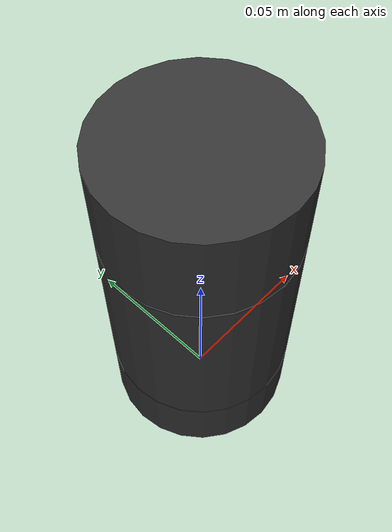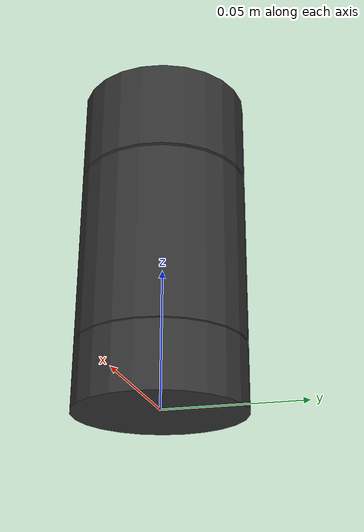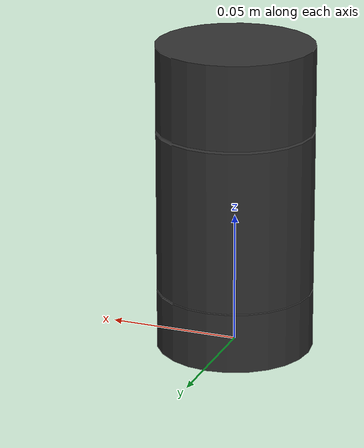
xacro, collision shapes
<?xml version="1.0"?>
<!--
  Pan-Tilt 云台独立模型（不含相机）
  用于可视化云台坐标系
-->
<robot name="pan_tilt_robot" xmlns:xacro="http://www.ros.org/wiki/xacro">

  <!-- 引入云台 macro -->
  <xacro:include filename="$(find pan_tilt_description)/urdf/pan_tilt.urdf.xacro"/>

  <!-- 虚拟基座 -->
  <link name="base_link"/>

  <!-- 挂载云台 -->
  <xacro:pan_tilt parent="base_link">
    <origin xyz="0 0 0" rpy="0 0 0"/>
  </xacro:pan_tilt>

</robot>

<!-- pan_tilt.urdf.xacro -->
<robot xmlns:xacro="http://www.ros.org/wiki/xacro" name="pan_tilt" description="iqr pan tilt">
  <xacro:macro name="pan_tilt" params="parent *origin">
    <xacro:property name="prefix" value="pan_tilt"/>
    <xacro:property name="P_PI" value="3.1415926535897931"/>

    <joint name="${prefix}_base_joint" type="fixed">
      <xacro:insert_block name="origin"/>
      <parent link="${parent}"/>
      <child link="${prefix}_base_link"/>
    </joint>

    <link name="${prefix}_base_link">
      <inertial>
        <origin xyz="0 0 0.01" rpy="0 0 0"/>
        <mass value="0.1"/>
        <inertia ixx="0.0001" ixy="0" ixz="0" iyy="0.0001" iyz="0" izz="0.0001"/>
      </inertial>
      <visual>
        <origin xyz="0 0 0" rpy="0 0 -${P_PI/2}"/>
        <geometry>
          <mesh filename="package://pan_tilt_description/urdf/mesh/base.stl"/>
        </geometry>
        <material name="">
          <color rgba="0.2 0.2 0.2 1"/>
        </material>
      </visual>
      <collision>
        <origin xyz="0 0 0.01" rpy="0 0 0"/>
        <geometry>
          <cylinder length="0.023" radius="0.03"/>
        </geometry>
      </collision>
    </link>

    <link name="${prefix}_yaw_link">
      <inertial>
        <origin xyz="0 0 0.03" rpy="0 0 0"/>
        <mass value="0.08"/>
        <inertia ixx="0.0001" ixy="0" ixz="0" iyy="0.0001" iyz="0" izz="0.0001"/>
      </inertial>
      <visual>
        <origin xyz="0 0 0" rpy="0 0 -${P_PI/2}"/>
        <geometry>
          <mesh filename="package://pan_tilt_description/urdf/mesh/yaw.stl"/>
        </geometry>
        <material name="">
          <color rgba="0.2 0.2 0.2 1"/>
        </material>
      </visual>
      <collision>
        <origin xyz="0 0 0.03" rpy="0 0 0"/>
        <geometry>
          <cylinder length="0.062" radius="0.03"/>
        </geometry>
      </collision>
    </link>
    <joint name="${prefix}_yaw_joint" type="revolute">
      <origin xyz="0.0 0.0 0.023" rpy="0.0 0.0 0.0"/>
      <parent link="${prefix}_base_link"/>
      <child link="${prefix}_yaw_link"/>
      <axis xyz="0 0 1"/>
      <limit lower="${-P_PI/3}" upper="${P_PI/3}" effort="5.0" velocity="${P_PI/6}"/>
      <dynamics damping="0.5" friction="0.1"/>
    </joint>

    <!-- Yaw Transmission for Gazebo -->
    <transmission name="${prefix}_yaw_trans">
      <type>transmission_interface/SimpleTransmission</type>
      <joint name="${prefix}_yaw_joint">
        <hardwareInterface>hardware_interface/PositionJointInterface</hardwareInterface>
      </joint>
      <actuator name="${prefix}_yaw_motor">
        <hardwareInterface>hardware_interface/PositionJointInterface</hardwareInterface>
        <mechanicalReduction>1</mechanicalReduction>
      </actuator>
    </transmission>

    <link name="${prefix}_pitch_link">
      <inertial>
        <origin xyz="0 0 0.016" rpy="0 0 0"/>
        <mass value="0.06"/>
        <inertia ixx="0.0001" ixy="0" ixz="0" iyy="0.0001" iyz="0" izz="0.0001"/>
      </inertial>
      <visual>
        <origin xyz="0 0 0" rpy="0 0 -${P_PI/2}"/>
        <geometry>
          <mesh filename="package://pan_tilt_description/urdf/mesh/pitch.stl"/>
        </geometry>
        <material name="">
          <color rgba="0.2 0.2 0.2 1"/>
        </material>
      </visual>
      <collision>
        <origin xyz="0 0 0.016" rpy="0 0 0"/>
        <geometry>
          <cylinder length="0.032" radius="0.03"/>
        </geometry>
      </collision>
    </link>
    <joint name="${prefix}_pitch_joint" type="revolute">
      <origin xyz="0.0 0.0 0.062" rpy="0.0 0.0 0.0"/>
      <parent link="${prefix}_yaw_link"/>
      <child link="${prefix}_pitch_link"/>
      <axis xyz="0 1 0"/>
      <limit lower="${-P_PI/3}" upper="${P_PI/3}" effort="5.0" velocity="${P_PI/6}"/>
      <dynamics damping="0.5" friction="0.1"/>
    </joint>

    <!-- Pitch Transmission for Gazebo -->
    <transmission name="${prefix}_pitch_trans">
      <type>transmission_interface/SimpleTransmission</type>
      <joint name="${prefix}_pitch_joint">
        <hardwareInterface>hardware_interface/PositionJointInterface</hardwareInterface>
      </joint>
      <actuator name="${prefix}_pitch_motor">
        <hardwareInterface>hardware_interface/PositionJointInterface</hardwareInterface>
        <mechanicalReduction>1</mechanicalReduction>
      </actuator>
    </transmission>

    <link name="${prefix}_surface">
      <inertial>
        <origin xyz="0 0 0" rpy="0 0 0"/>
        <mass value="0.01"/>
        <inertia ixx="0.00001" ixy="0" ixz="0" iyy="0.00001" iyz="0" izz="0.00001"/>
      </inertial>
    </link>
    <joint name="${prefix}_surface_joint" type="fixed">
      <origin xyz="0.0 0.0 0.032" rpy="0 0 0"/>
      <parent link="${prefix}_pitch_link"/>
      <child link="${prefix}_surface"/>
    </joint>

  </xacro:macro>

</robot>
